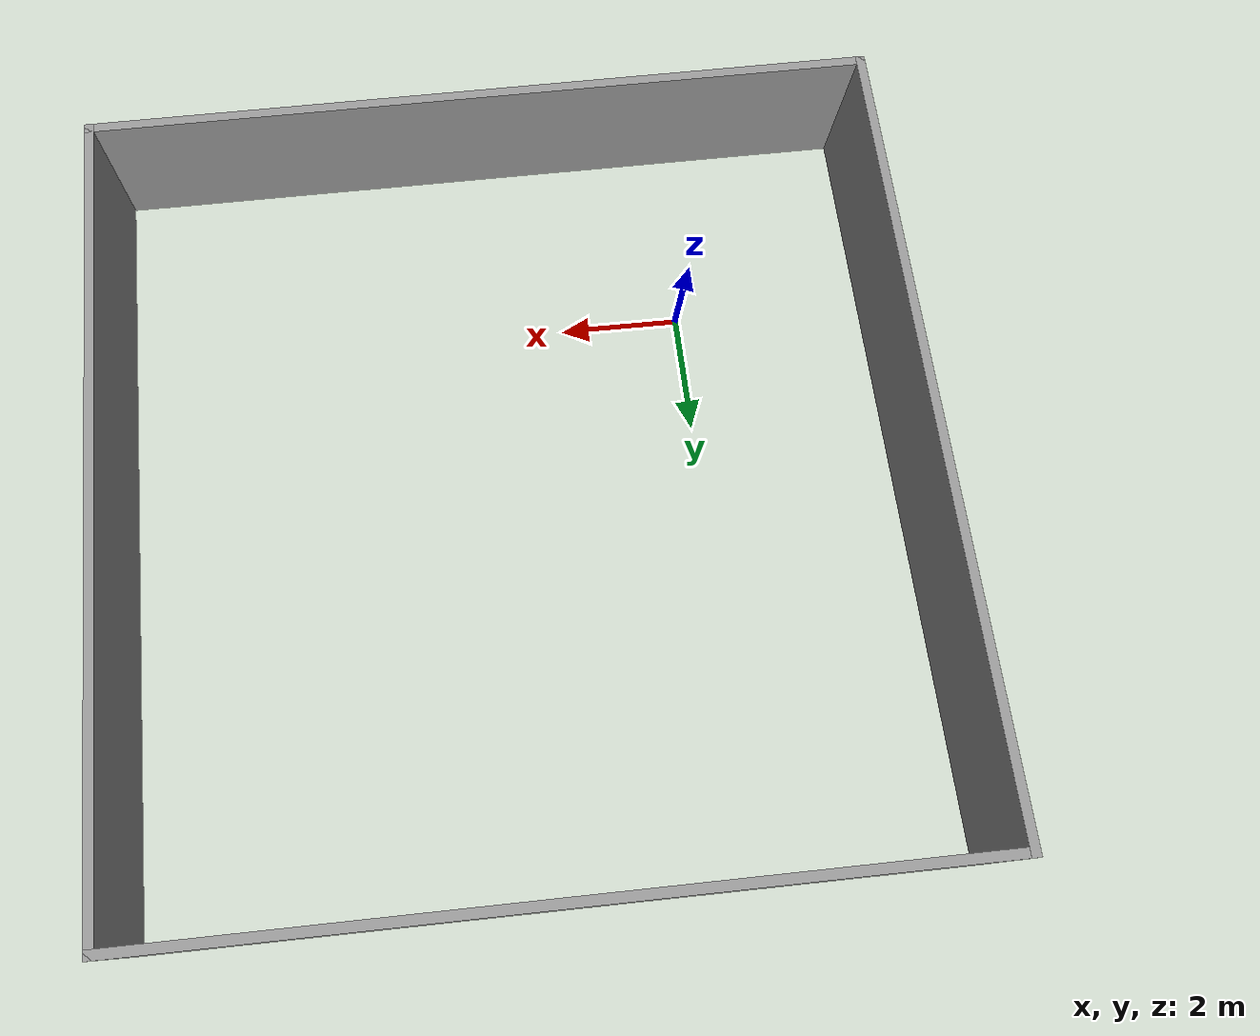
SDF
<?xml version='1.0'?>
<sdf version='1.7'>
  <model name='walls'>
    <pose>3.105 3.115 0 0 -0 0</pose>
    <link name='Wall_0'>
      <collision name='Wall_0_Collision'>
        <geometry>
          <box>
            <size>13 0.15 2.5</size>
          </box>
        </geometry>
        <pose>0 0 1.25 0 -0 0</pose>
      </collision>
      <visual name='Wall_0_Visual'>
        <pose>0 0 1.25 0 -0 0</pose>
        <geometry>
          <box>
            <size>13 0.15 2.5</size>
          </box>
        </geometry>
        <material>
          <script>
            <uri>file://media/materials/scripts/gazebo.material</uri>
            <name>Gazebo/Grey</name>
          </script>
          <ambient>1 1 1 1</ambient>
        </material>
        <meta>
          <layer>0</layer>
        </meta>
      </visual>
      <pose>-6.425 0 0 0 -0 1.5708</pose>
    </link>
    <link name='Wall_3'>
      <collision name='Wall_3_Collision'>
        <geometry>
          <box>
            <size>13 0.15 2.5</size>
          </box>
        </geometry>
        <pose>0 0 1.25 0 -0 0</pose>
      </collision>
      <visual name='Wall_3_Visual'>
        <pose>0 0 1.25 0 -0 0</pose>
        <geometry>
          <box>
            <size>13 0.15 2.5</size>
          </box>
        </geometry>
        <material>
          <script>
            <uri>file://media/materials/scripts/gazebo.material</uri>
            <name>Gazebo/Grey</name>
          </script>
          <ambient>1 1 1 1</ambient>
        </material>
        <meta>
          <layer>0</layer>
        </meta>
      </visual>
      <pose>0 -6.425 0 0 -0 0</pose>
    </link>
    <link name='Wall_5'>
      <collision name='Wall_5_Collision'>
        <geometry>
          <box>
            <size>13 0.15 2.5</size>
          </box>
        </geometry>
        <pose>0 0 1.25 0 -0 0</pose>
      </collision>
      <visual name='Wall_5_Visual'>
        <pose>0 0 1.25 0 -0 0</pose>
        <geometry>
          <box>
            <size>13 0.15 2.5</size>
          </box>
        </geometry>
        <material>
          <script>
            <uri>file://media/materials/scripts/gazebo.material</uri>
            <name>Gazebo/Grey</name>
          </script>
          <ambient>1 1 1 1</ambient>
        </material>
        <meta>
          <layer>0</layer>
        </meta>
      </visual>
      <pose>6.425 0 0 0 -0 1.5708</pose>
    </link>
    <link name='Wall_7'>
      <collision name='Wall_7_Collision'>
        <geometry>
          <box>
            <size>13 0.15 2.5</size>
          </box>
        </geometry>
        <pose>0 0 1.25 0 -0 0</pose>
      </collision>
      <visual name='Wall_7_Visual'>
        <pose>0 0 1.25 0 -0 0</pose>
        <geometry>
          <box>
            <size>13 0.15 2.5</size>
          </box>
        </geometry>
        <material>
          <script>
            <uri>file://media/materials/scripts/gazebo.material</uri>
            <name>Gazebo/Grey</name>
          </script>
          <ambient>1 1 1 1</ambient>
        </material>
        <meta>
          <layer>0</layer>
        </meta>
      </visual>
      <pose>0 6.425 0 0 -0 0</pose>
    </link>
    <static>1</static>
  </model>
</sdf>
